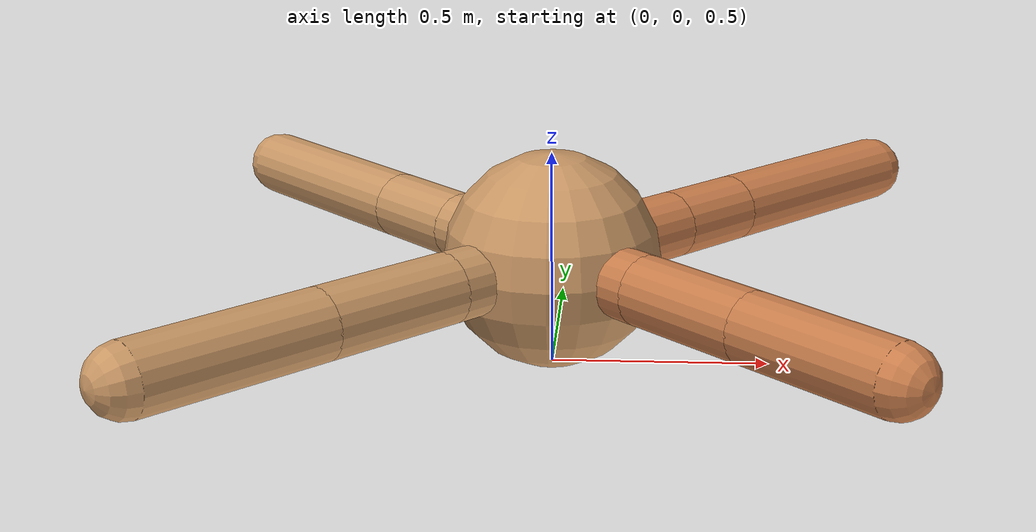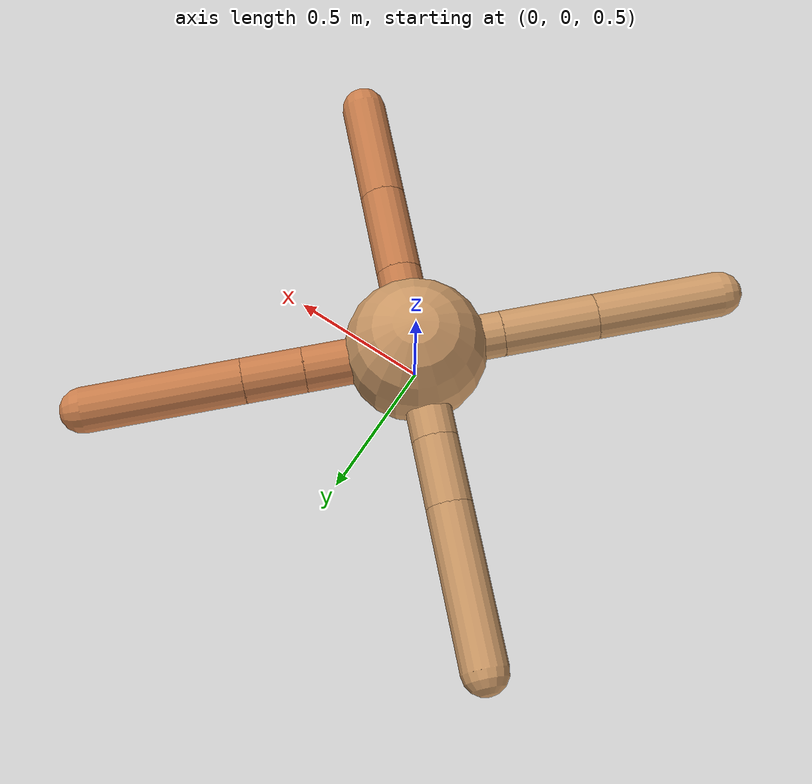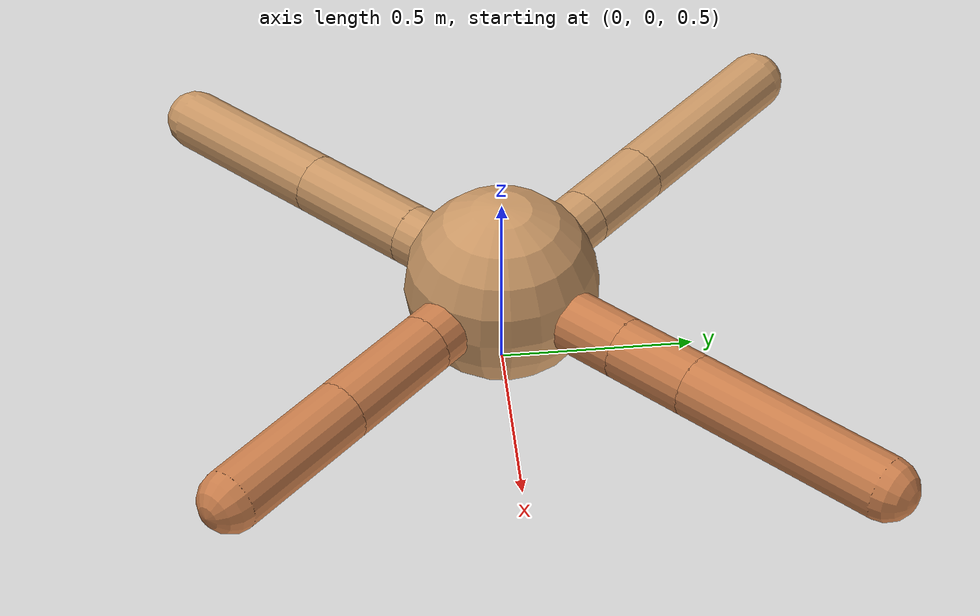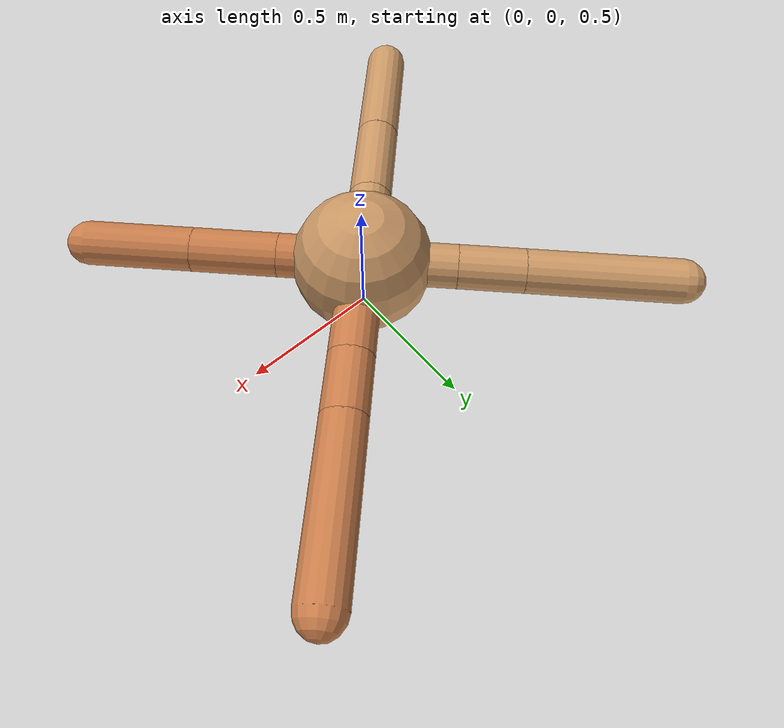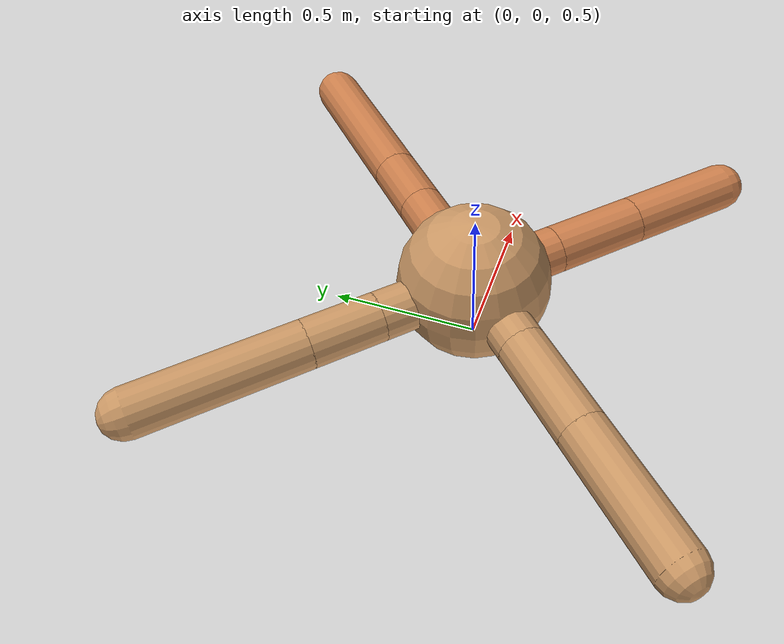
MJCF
<mujoco model="ant">
  <compiler angle="degree" coordinate="local" inertiafromgeom="true" />
  <option integrator="RK4" timestep="0.01" />
  <custom>
    <numeric data="0.0 0.0 0.55 1.0 0.0 0.0 0.0 0.0 1.0 0.0 -1.0 0.0 -1.0 0.0 1.0" name="init_qpos" />
  </custom>
  <default>
    <joint armature="1" damping="1" limited="true" />
    <geom conaffinity="0" condim="3" density="5.0" friction="1.5 0.1 0.1" margin="0.01" rgba="0.8 0.6 0.4 1" />
  </default>
  <worldbody>
    <body name="torso" pos="0 0 0.75">
      <geom name="torso_geom" pos="0 0 0" size="0.25" type="sphere" />

      <body name="front_left_leg" pos="0 0 0">
        <geom fromto="0.0 0.0 0.0 0.27607400701504614 0.27607400701504614 0.0" name="aux_1_geom" size="0.08" type="capsule" rgba=".8 .5 .3 1" />
        <body name="aux_1" pos="0.27607400701504614 0.27607400701504614 0.0">
          <joint axis="0 0 1" name="hip_1" pos="0.0 0.0 0.0" range="-40 40" type="hinge" />
          <geom fromto="0.0 0.0 0.0 0.14982029306986164 0.14982029306986164 0.0" name="left_leg_geom" size="0.08" type="capsule" rgba=".8 .5 .3 1" />
          <body pos="0.14982029306986164 0.14982029306986164 0.0" name="front_left_foot">
            <joint axis="-1 1 0" name="ankle_1" pos="0.0 0.0 0.0" range="30 100" type="hinge" />
            <geom fromto="0.0 0.0 0.0 0.38922039363194333 0.38922039363194333 0.0" name="left_ankle_geom" size="0.08" type="capsule" rgba=".8 .5 .3 1" />
          </body>
        </body>
      </body>
      <body name="front_right_leg" pos="0 0 0">
        <geom fromto="0.0 0.0 0.0 -0.2372221990411333 0.2372221990411333 0.0" name="aux_2_geom" size="0.08" type="capsule" />
        <body name="aux_2" pos="-0.2372221990411333 0.2372221990411333 0.0">
          <joint axis="0 0 1" name="hip_2" pos="0.0 0.0 0.0" range="-40 40" type="hinge" />
          <geom fromto="0.0 0.0 0.0 -0.1666824727573016 0.1666824727573016 0.0" name="right_leg_geom" size="0.08" type="capsule" />
          <body pos="-0.1666824727573016 0.1666824727573016 0.0" name="front_right_foot">
            <joint axis="1 1 0" name="ankle_2" pos="0.0 0.0 0.0" range="-100 -30" type="hinge" />
            <geom fromto="0.0 0.0 0.0 -0.38478510246903935 0.38478510246903935 0.0" name="right_ankle_geom" size="0.08" type="capsule" />
          </body>
        </body>
      </body>
      <body name="left_back_leg" pos="0 0 0">
        <geom fromto="0.0 0.0 0.0 -0.21545196798786576 -0.21545196798786576 0.0" name="aux_3_geom" size="0.08" type="capsule" />
        <body name="aux_3" pos="-0.21545196798786576 -0.21545196798786576 0.0">
          <joint axis="0 0 1" name="hip_3" pos="0.0 0.0 0.0" range="-40 40" type="hinge" />
          <geom fromto="0.0 0.0 0.0 -0.236014204022682 -0.236014204022682 0.0" name="back_leg_geom" size="0.08" type="capsule" />
          <body pos="-0.236014204022682 -0.236014204022682 0.0" name="left_back_foot">
            <joint axis="-1 1 0" name="ankle_3" pos="0.0 0.0 0.0" range="-100 -30" type="hinge" />
            <geom fromto="0.0 0.0 0.0 -0.31787392252823465 -0.31787392252823465 0.0" name="third_ankle_geom" size="0.08" type="capsule" />
          </body>
        </body>
      </body>
      <body name="right_back_leg" pos="0 0 0">
        <geom fromto="0.0 0.0 0.0 0.21153282027978967 -0.21153282027978967 0.0" name="aux_4_geom" size="0.08" type="capsule" rgba=".8 .5 .3 1" />
        <body name="aux_4" pos="0.21153282027978967 -0.21153282027978967 0.0">
          <joint axis="0 0 1" name="hip_4" pos="0.0 0.0 0.0" range="-40 40" type="hinge" />
          <geom fromto="0.0 0.0 0.0 0.21738999465899092 -0.21738999465899092 0.0" name="rightback_leg_geom" size="0.08" type="capsule" rgba=".8 .5 .3 1" />
          <body pos="0.21738999465899092 -0.21738999465899092 0.0" name="right_back_foot">
            <joint axis="1 1 0" name="ankle_4" pos="0.0 0.0 0.0" range="30 100" type="hinge" />
            <geom fromto="0.0 0.0 0.0 0.2689521884968259 -0.2689521884968259 0.0" name="fourth_ankle_geom" size="0.08" type="capsule" rgba=".8 .5 .3 1" />
          </body>
        </body>
      </body>
    </body>
  </worldbody>
  <actuator>
    <motor ctrllimited="true" ctrlrange="-1.0 1.0" joint="hip_4" gear="150" />
    <motor ctrllimited="true" ctrlrange="-1.0 1.0" joint="ankle_4" gear="150" />
    <motor ctrllimited="true" ctrlrange="-1.0 1.0" joint="hip_1" gear="150" />
    <motor ctrllimited="true" ctrlrange="-1.0 1.0" joint="ankle_1" gear="150" />
    <motor ctrllimited="true" ctrlrange="-1.0 1.0" joint="hip_2" gear="150" />
    <motor ctrllimited="true" ctrlrange="-1.0 1.0" joint="ankle_2" gear="150" />
    <motor ctrllimited="true" ctrlrange="-1.0 1.0" joint="hip_3" gear="150" />
    <motor ctrllimited="true" ctrlrange="-1.0 1.0" joint="ankle_3" gear="150" />
  </actuator>
</mujoco>
